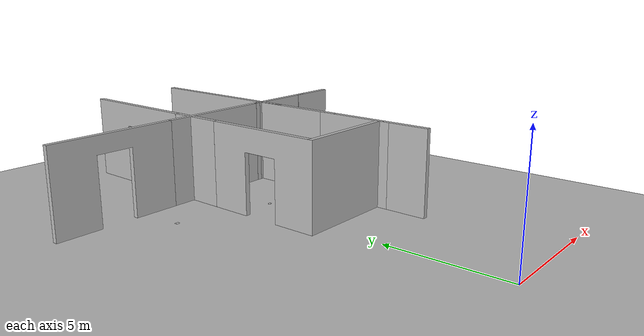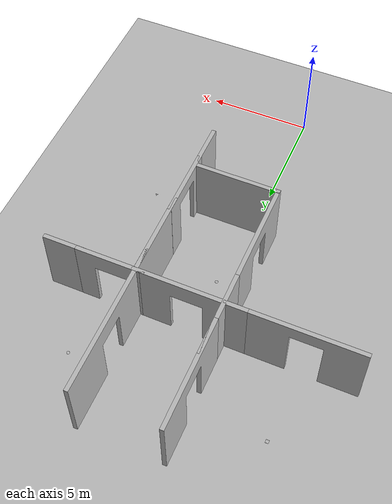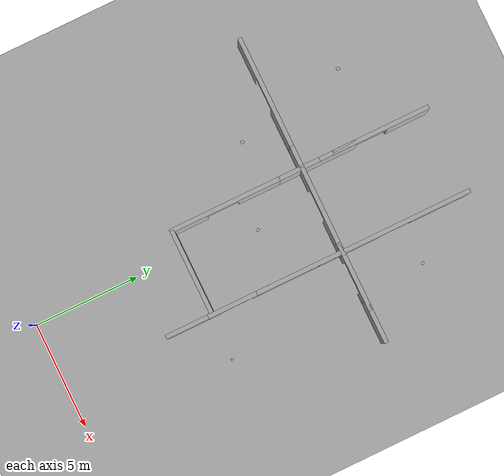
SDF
<sdf version="1.5">
 <world name="default">
  <physics type="ode">
   <max_step_size>0.004</max_step_size>
   <real_time_factor>1.0</real_time_factor>
   <real_time_update_rate>250</real_time_update_rate>
  </physics>
  <plugin name="gz::sim::systems::Physics" filename="gz-sim-physics-system"/>
  <plugin name="gz::sim::systems::UserCommands" filename="gz-sim-user-commands-system"/>
  <plugin name="gz::sim::systems::SceneBroadcaster" filename="gz-sim-scene-broadcaster-system"/>
  <plugin name="gz::sim::systems::Contact" filename="gz-sim-contact-system"/>
  <plugin name="gz::sim::systems::Imu" filename="gz-sim-imu-system"/>
  <plugin name="gz::sim::systems::AirPressure" filename="gz-sim-air-pressure-system"/>
  <plugin name="gz::sim::systems::ApplyLinkWrench" filename="gz-sim-apply-link-wrench-system"/>
  <plugin name="gz::sim::systems::NavSat" filename="gz-sim-navsat-system"/>
  <plugin name="gz::sim::systems::Sensors" filename="gz-sim-sensors-system">
   <render_engine>ogre2</render_engine>
  </plugin>
  <gravity>0 0 -9.8</gravity>
  <magnetic_field>6e-06 2.3e-05 -4.2e-05</magnetic_field>
  <atmosphere type="adiabatic"/>
  <scene>
   <grid>false</grid>
   <ambient>0.4 0.4 0.4 1</ambient>
   <background>0.7 0.7 0.7 1</background>
   <shadows>true</shadows>
  </scene>
  <spherical_coordinates>
   <surface_model>EARTH_WGS84</surface_model>
   <world_frame_orientation>ENU</world_frame_orientation>
   <latitude_deg>47.397971057728974</latitude_deg>
   <longitude_deg>8.546163739800146</longitude_deg>
   <elevation>0</elevation>
  </spherical_coordinates>
  <light type="directional" name="sun">
   <pose>0 0 10 0 0 0</pose>
   <diffuse>0.8 0.8 0.8 1</diffuse>
   <specular>0.8 0.8 0.8 1</specular>
   <attenuation>
    <range>1000</range>
    <constant>0.9</constant>
    <linear>0.01</linear>
    <quadratic>0.001</quadratic>
   </attenuation>
   <direction>-0.5 0.1 -0.9</direction>
  </light>
  <include><uri>model://ground_my</uri></include>
  <include>
   <name>wall_w_win_0</name>
   <uri>model://house_scene_1_wall_w_window_new</uri>
   <static>true</static>
   <pose>-2.475 12.5 0 0 0 1.570840</pose>
  </include>
  <include>
   <name>wall_5</name>
   <uri>model://house_scene_1_wall</uri>
   <static>true</static>
   <pose>3.026288 11.437896 0 0 0 1.570840</pose>
  </include>
  <include>
   <name>wall_w_win_1</name>
   <uri>model://house_scene_1_wall_w_window</uri>
   <static>true</static>
   <pose>-2.222210 10.732579 0 0 0 1.567493</pose>
  </include>
  <include>
   <name>wall_w_win_2</name>
   <uri>model://house_scene_1_wall_w_window</uri>
   <static>true</static>
   <pose>-3.958748 12.639949 0 0 0 0</pose>
  </include>
  <include>
   <name>wall_w_win_3</name>
   <uri>model://house_scene_1_wall_w_window</uri>
   <static>true</static>
   <pose>-3.960691 19.887342 0 0 0 0</pose>
  </include>
  <include>
   <name>wall_w_door_1</name>
   <uri>model://house_scene_1_wall_w_door</uri>
   <static>true</static>
   <pose>-5.386255 9.582332 0 0 0 0</pose>
  </include>
  <include>
   <name>wall_1</name>
   <uri>model://house_scene_1_wall</uri>
   <static>true</static>
   <pose>0.821740 7.332443 0 0 0 0</pose>
  </include>
  <include>
   <name>wall_2</name>
   <uri>model://house_scene_1_wall</uri>
   <static>true</static>
   <pose>-1.037633 14.302383 0 0 0 -1.570796</pose>
  </include>
  <include>
   <name>figure_circle_green</name>
   <uri>model://figure_circle_green</uri>
   <static>true</static>
   <pose>0.450661 10.79 0.125 0 0 0</pose>
  </include>
  <include>
   <name>figure_circle_red</name>
   <uri>model://figure_circle_red</uri>
   <static>true</static>
   <pose>5.0 16.79 0.125 0 0 0</pose>
  </include>
  <include>
   <name>figure_square_green</name>
   <uri>model://figure_square_green</uri>
   <static>true</static>
   <pose>-4.506818 17.1795 0.125 0 0 0</pose>
  </include>
  <include>
   <name>figure_square_red</name>
   <uri>model://figure_square_red</uri>
   <pose>-3.4 11.88 0.125 0 0 0</pose>
  </include>
  <include>
   <name>figure_triangle_green</name>
   <uri>model://figure_triangle_green</uri>
   <static>true</static>
   <pose>5.1726 7.2202 0.124 0 0 0</pose>
  </include>
  <include>
   <name>wall_w_door_small_1</name>
   <uri>model://house_scene_1_wall_w_door_small</uri>
   <static>true</static>
   <pose>3.024304 8.495412 0 0 0 1.570796</pose>
  </include>
  <include>
   <name>wall_small_1</name>
   <uri>model://house_scene_1_wall_small</uri>
   <static>true</static>
   <pose>3.024304 6.060440 0 0 0 1.570796</pose>
  </include>
  <include>
   <name>wall_small_2</name>
   <uri>model://house_scene_1_wall_small</uri>
   <static>true</static>
   <pose>6.369716 13.632973 0 0 0 0</pose>
  </include>
  <include>
   <name>wall_w_win_small_1</name>
   <uri>model://house_scene_1_wall_w_window_small</uri>
   <static>true</static>
   <pose>4.171270 13.632973 0 0 0 0</pose>
  </include>
 </world>
</sdf>

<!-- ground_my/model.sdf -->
<sdf version="1.5">
    <model name="ground">
        <static>true</static>
        <link name="link">
            <collision name="collision">
                <geometry>
                    <mesh>
                        <scale>1 1 1</scale>
                        <uri>model://ground_my/meshes/ground.dae</uri>
                    </mesh>
                    <surface>
                    <friction>
                        <ode>
                            <mu>1.2</mu>
                            <mu2>1.2</mu2>
                        </ode>
                    </friction>
                    </surface>
                </geometry>
            </collision>
            <visual name="visual">
              <geometry>
                <mesh>
                    <scale>1 1 1</scale>
                    <uri>model://ground_my/meshes/ground.dae</uri>
                </mesh>
              </geometry>
             </visual>
        </link>
    </model>
</sdf>

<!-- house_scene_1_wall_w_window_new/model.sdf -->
<sdf version="1.5">
    <model name="house3">
        <static>true</static>
        <link name="link">
            <collision name="collision1">
                <pose>0 0 0 0 0 0</pose>
                <geometry>
                    <mesh>
                        <uri>model://house_scene_1_wall_w_window_new/meshes/scene_walls_in2.dae</uri>
                    </mesh>
                </geometry>
            </collision>
            <visual name="visual_walls3">
              <pose>0 0 0 0 0 0</pose>
              <geometry>
              <mesh>
                 <uri>model://house_scene_1_wall_w_window_new/meshes/scene_walls_in2.dae</uri>
              </mesh>
              </geometry>
             </visual>
        </link>
    </model>
</sdf>

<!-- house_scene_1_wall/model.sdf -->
<sdf version="1.5">
    <model name="house1">
        <static>true</static>
        <link name="link">
            <collision name="collision1">
                <pose>0 0 0 0 0 0</pose>
                <geometry>
                    <mesh>
                        <uri>model://house_scene_1_wall/meshes/scene_1_wall.dae</uri>
                    </mesh>
                </geometry>
            </collision>
            <visual name="visual_walls1">
              <pose>0 0 0 0 0 0</pose>
              <geometry>
              <mesh>
                 <uri>model://house_scene_1_wall/meshes/scene_1_wall.dae</uri>
              </mesh>
              </geometry>
             </visual>
        </link>
    </model>
</sdf>

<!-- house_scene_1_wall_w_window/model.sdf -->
<sdf version="1.5">
    <model name="house3">
        <static>true</static>
        <link name="link">
            <collision name="collision1">
                <pose>0 0 0 0 0 0</pose>
                <geometry>
                    <mesh>
                        <uri>model://house_scene_1_wall_w_window/meshes/scene_1_wall_w_window.dae</uri>
                    </mesh>
                </geometry>
            </collision>
            <visual name="visual_walls3">
              <pose>0 0 0 0 0 0</pose>
              <geometry>
              <mesh>
                 <uri>model://house_scene_1_wall_w_window/meshes/scene_1_wall_w_window.dae</uri>
              </mesh>
              </geometry>
             </visual>
        </link>
    </model>
</sdf>

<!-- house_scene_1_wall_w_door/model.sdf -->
<sdf version="1.5">
    <model name="house2">
        <static>true</static>
        <link name="link">
            <collision name="collision1">
                <pose>0 0 0 0 0 0</pose>
                <geometry>
                    <mesh>
                        <uri>model://house_scene_1_wall_w_door/meshes/scene_1_wall_w_door.dae</uri>
                    </mesh>
                </geometry>
            </collision>
            <visual name="visual_walls2">
              <pose>0 0 0 0 0 0</pose>
              <geometry>
              <mesh>
                 <uri>model://house_scene_1_wall_w_door/meshes/scene_1_wall_w_door.dae</uri>
              </mesh>
              </geometry>
             </visual>
        </link>
    </model>
</sdf>

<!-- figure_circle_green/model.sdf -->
<sdf version="1.5">
    <model name="figure_circle_green">
        <static>true</static>
        <link name="link">
            <collision name="collision1">
                <pose>0 0 0 0 0 0</pose>
                <geometry>
                    <mesh>
                        <uri>model://figure_circle_green/meshes/figure_circle_green.dae</uri>
                        <scale>0.15 0.15 0.15</scale>
                    </mesh>
                </geometry>
            </collision>
            <visual name="visual1">
                <pose>0 0 0 0 0 0</pose>
                <geometry>
                    <mesh>
                        <uri>model://figure_circle_green/meshes/figure_circle_green.dae</uri>
                        <scale>0.15 0.15 0.15</scale>
                    </mesh>
                </geometry>
            </visual>
        </link>
    </model>
</sdf>

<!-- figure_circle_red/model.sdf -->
<sdf version="1.5">
    <model name="figure_circle_red">
        <static>true</static>
        <link name="link">
            <collision name="collision1">
                <pose>0 0 0 0 0 0</pose>
                <geometry>
                    <mesh>
                        <uri>model://figure_circle_red/meshes/figure_circle_red.dae</uri>
                        <scale>0.15 0.15 0.15</scale>
                    </mesh>
                </geometry>
            </collision>
            <visual name="visual1">
                <pose>0 0 0 0 0 0</pose>
                <geometry>
                    <mesh>
                        <uri>model://figure_circle_red/meshes/figure_circle_red.dae</uri>
                        <scale>0.15 0.15 0.15</scale>
                    </mesh>
                </geometry>
            </visual>
        </link>
    </model>
</sdf>

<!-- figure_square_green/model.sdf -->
<sdf version="1.5">
    <model name="figure_square_green">
        <static>true</static>
        <link name="link">
            <collision name="collision1">
                <pose>0 0 0 0 0 0</pose>
                <geometry>
                    <mesh>
                        <uri>model://figure_square_green/meshes/figure_square_green.dae</uri>
                        <scale>0.15 0.15 0.15</scale>
                    </mesh>
                </geometry>
            </collision>
            <visual name="visual1">
                <pose>0 0 0 0 0 0</pose>
                <geometry>
                    <mesh>
                        <uri>model://figure_square_green/meshes/figure_square_green.dae</uri>
                        <scale>0.15 0.15 0.15</scale>
                    </mesh>
                </geometry>
            </visual>
        </link>
    </model>
</sdf>

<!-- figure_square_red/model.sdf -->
<sdf version="1.5">
    <model name="figure_square_red">
        <static>true</static>
        <link name="link">
            <collision name="collision1">
                <pose>0 0 0 0 0 0</pose>
                <geometry>
                    <mesh>
                        <uri>model://figure_square_red/meshes/figure_square_red.dae</uri>
                        <scale>0.15 0.15 0.15</scale>
                    </mesh>
                </geometry>
            </collision>
            <visual name="visual1">
                <pose>0 0 0 0 0 0</pose>
                <geometry>
                    <mesh>
                        <uri>model://figure_square_red/meshes/figure_square_red.dae</uri>
                        <scale>0.15 0.15 0.15</scale>
                    </mesh>
                </geometry>
            </visual>
        </link>
    </model>
</sdf>

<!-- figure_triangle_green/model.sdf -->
<sdf version="1.5">
    <model name="figure_triangle_green">
        <static>true</static>
        <link name="link">
            <collision name="collision1">
                <pose>0 0 0 0 0 0</pose>
                <geometry>
                    <mesh>
                        <uri>model://figure_triangle_green/meshes/figure_triangle_green.dae</uri>
                        <scale>0.15 0.15 0.15</scale>
                    </mesh>
                </geometry>
            </collision>
            <visual name="visual1">
                <pose>0 0 0 0 0 0</pose>
                <geometry>
                    <mesh>
                        <uri>model://figure_triangle_green/meshes/figure_triangle_green.dae</uri>
                        <scale>0.15 0.15 0.15</scale>
                    </mesh>
                </geometry>
            </visual>
        </link>
    </model>
</sdf>

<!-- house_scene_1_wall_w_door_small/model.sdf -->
<sdf version="1.5">
    <model name="house2_small">
        <static>true</static>
        <link name="link">
            <collision name="collision1">
                <pose>0 0 0 0 0 0</pose>
                <geometry>
                    <mesh>
                        <uri>model://house_scene_1_wall_w_door_small/meshes/scene_1_wall_w_door_small.dae</uri>
                    </mesh>
                </geometry>
            </collision>
            <visual name="visual_walls2">
              <pose>0 0 0 0 0 0</pose>
              <geometry>
              <mesh>
                 <uri>model://house_scene_1_wall_w_door_small/meshes/scene_1_wall_w_door_small.dae</uri>
              </mesh>
              </geometry>
             </visual>
        </link>
    </model>
</sdf>

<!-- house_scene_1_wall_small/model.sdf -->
<sdf version="1.5">
    <model name="house1_small">
        <static>true</static>
        <link name="link">
            <collision name="collision1">
                <pose>0 0 0 0 0 0</pose>
                <geometry>
                    <mesh>
                        <uri>model://house_scene_1_wall_small/meshes/scene_1_wall_small.dae</uri>
                    </mesh>
                </geometry>
            </collision>
            <visual name="visual_walls1">
              <pose>0 0 0 0 0 0</pose>
              <geometry>
              <mesh>
                 <uri>model://house_scene_1_wall_small/meshes/scene_1_wall_small.dae</uri>
              </mesh>
              </geometry>
             </visual>
        </link>
    </model>
</sdf>

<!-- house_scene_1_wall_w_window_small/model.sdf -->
<sdf version="1.5">
    <model name="house3_small">
        <static>true</static>
        <link name="link">
            <collision name="collision1">
                <pose>0 0 0 0 0 0</pose>
                <geometry>
                    <mesh>
                        <uri>model://house_scene_1_wall_w_window_small/meshes/scene_1_wall_w_window_small.dae</uri>
                    </mesh>
                </geometry>
            </collision>
            <visual name="visual_walls3">
              <pose>0 0 0 0 0 0</pose>
              <geometry>
              <mesh>
                 <uri>model://house_scene_1_wall_w_window_small/meshes/scene_1_wall_w_window_small.dae</uri>
              </mesh>
              </geometry>
             </visual>
        </link>
    </model>
</sdf>
